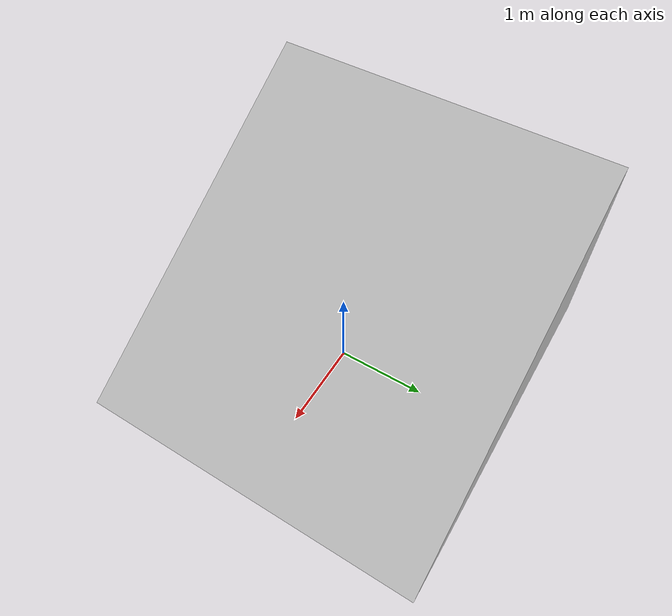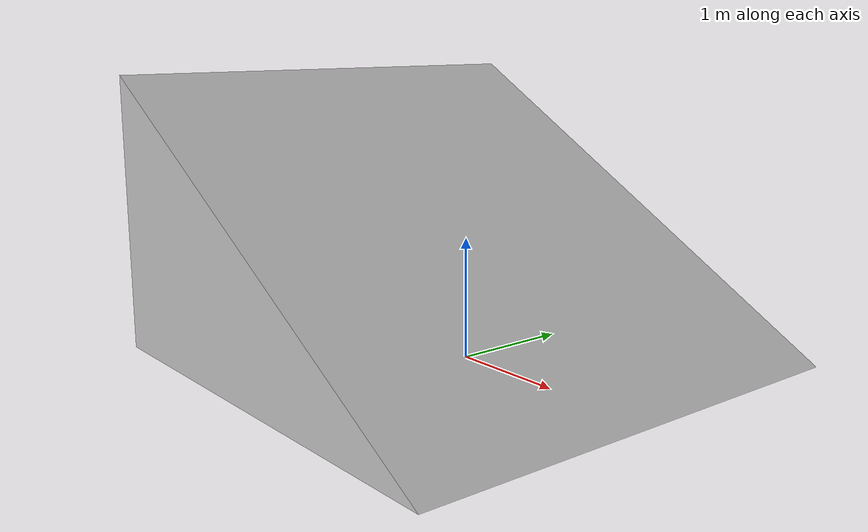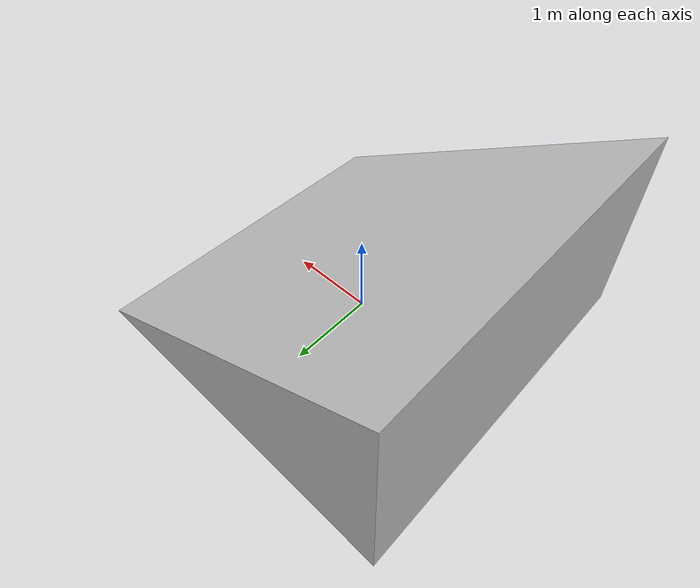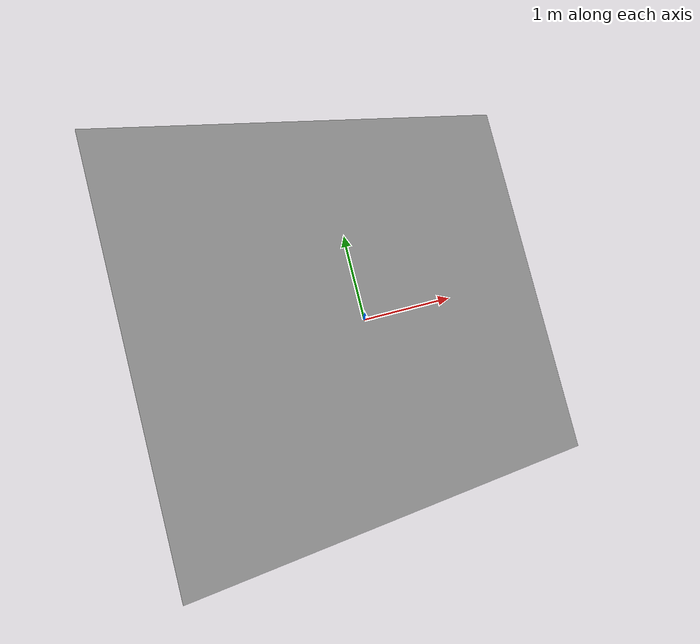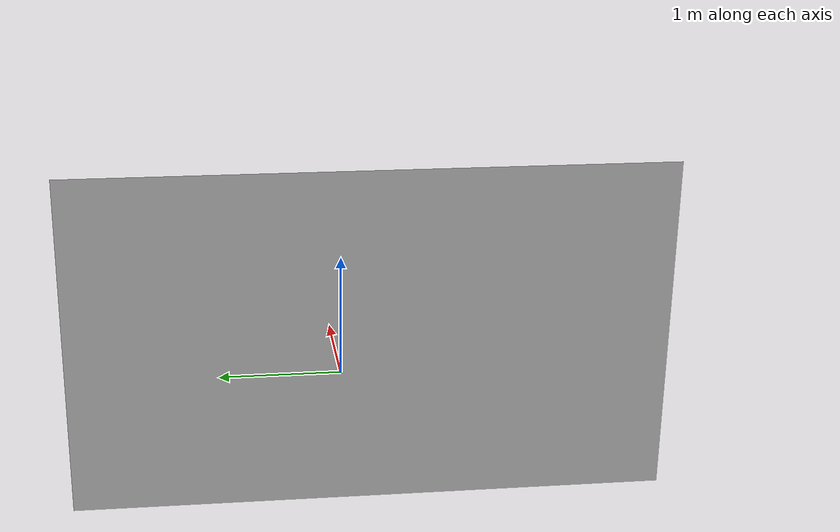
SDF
<?xml version="1.0" ?>
<sdf version="1.4">
	<model name="30_degree_ramp">
		<static>true</static>
		<link name="link">
			<pose>0 0 0 0 0 0</pose>
			<collision name="collision">
				<geometry>
					<mesh>
						<uri>model://ramp_45/mesh/ramp_45.dae</uri>
						<scale>2.0 2.0 1.15</scale>
					</mesh>
				</geometry>
				<surface>
					<friction>
						<ode>
                                                        <mu>1</mu>
                                                        <mu2>1</mu2>
						</ode>
					</friction>
				</surface>
			</collision>
			<visual name="visual">
				<geometry>
					<mesh>
						<uri>model://ramp_45/mesh/ramp_45.dae</uri>
						<scale>2.0 2.0 1.15</scale>
					</mesh>
				</geometry>
			</visual>
		</link>
	</model>
</sdf>
